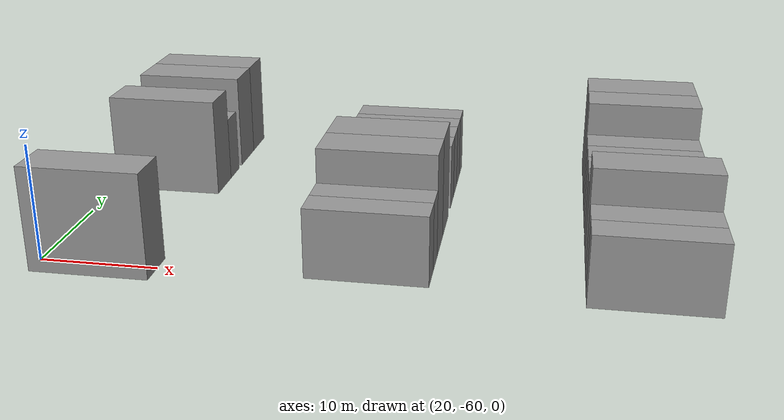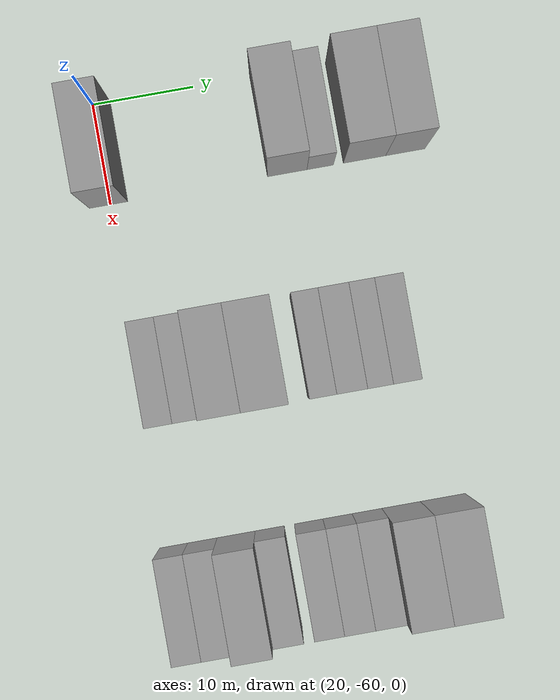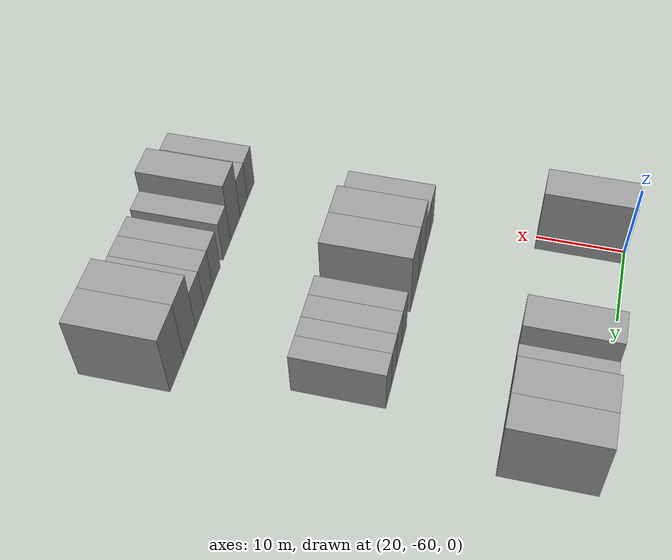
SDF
<sdf version="1.6">
 <world name="default">
  <model name="building_36">
   <static>1</static>
   <pose>25.0000 -60.1844 0 0.000000 0.000000 0.000000</pose>
   <link name="link">
    <pose>0 0 4.50 0 0 0</pose>
    <collision name="collision"><geometry><box><size>10.0000 3.8257 9.0000</size></box></geometry></collision>
    <visual name="visual">
     <cast_shadows>0</cast_shadows>
     <geometry><box><size>10.0000 3.8257 9.0000</size></box></geometry>
     <material>
      <script>
       <uri>model://grey_wall/materials/scripts</uri>
       <uri>model://grey_wall/materials/textures</uri>
       <name>vrc/grey_wall</name>
      </script>
     </material>
    </visual>
   </link>
  </model>
  <model name="building_37">
   <static>1</static>
   <pose>25.0000 -42.3587 0 0.000000 0.000000 0.000000</pose>
   <link name="link">
    <pose>0 0 4.50 0 0 0</pose>
    <collision name="collision"><geometry><box><size>10.0000 3.9419 9.0000</size></box></geometry></collision>
    <visual name="visual">
     <cast_shadows>0</cast_shadows>
     <geometry><box><size>10.0000 3.9419 9.0000</size></box></geometry>
     <material>
      <script>
       <uri>model://grey_wall/materials/scripts</uri>
       <uri>model://grey_wall/materials/textures</uri>
       <name>vrc/grey_wall</name>
      </script>
     </material>
    </visual>
   </link>
  </model>
  <model name="building_38">
   <static>1</static>
   <pose>25.0000 -39.0731 0 0.000000 0.000000 0.000000</pose>
   <link name="link">
    <pose>0 0 3.00 0 0 0</pose>
    <collision name="collision"><geometry><box><size>10.0000 2.6292 6.0000</size></box></geometry></collision>
    <visual name="visual">
     <cast_shadows>0</cast_shadows>
     <geometry><box><size>10.0000 2.6292 6.0000</size></box></geometry>
     <material>
      <script>
       <uri>model://grey_wall/materials/scripts</uri>
       <uri>model://grey_wall/materials/textures</uri>
       <name>vrc/grey_wall</name>
      </script>
     </material>
    </visual>
   </link>
  </model>
  <model name="building_39">
   <static>1</static>
   <pose>25.0000 -34.6380 0 0.000000 0.000000 0.000000</pose>
   <link name="link">
    <pose>0 0 4.50 0 0 0</pose>
    <collision name="collision"><geometry><box><size>10.0000 4.2411 9.0000</size></box></geometry></collision>
    <visual name="visual">
     <cast_shadows>0</cast_shadows>
     <geometry><box><size>10.0000 4.2411 9.0000</size></box></geometry>
     <material>
      <script>
       <uri>model://grey_wall/materials/scripts</uri>
       <uri>model://grey_wall/materials/textures</uri>
       <name>vrc/grey_wall</name>
      </script>
     </material>
    </visual>
   </link>
  </model>
  <model name="building_40">
   <static>1</static>
   <pose>25.0000 -30.5647 0 0.000000 0.000000 0.000000</pose>
   <link name="link">
    <pose>0 0 4.50 0 0 0</pose>
    <collision name="collision"><geometry><box><size>10.0000 3.9054 9.0000</size></box></geometry></collision>
    <visual name="visual">
     <cast_shadows>0</cast_shadows>
     <geometry><box><size>10.0000 3.9054 9.0000</size></box></geometry>
     <material>
      <script>
       <uri>model://grey_wall/materials/scripts</uri>
       <uri>model://grey_wall/materials/textures</uri>
       <name>vrc/grey_wall</name>
      </script>
     </material>
    </visual>
   </link>
  </model>
  <model name="building_158">
   <static>1</static>
   <pose>47.0000 -58.4649 0 0.000000 0.000000 0.000000</pose>
   <link name="link">
    <pose>0 0 3.00 0 0 0</pose>
    <collision name="collision"><geometry><box><size>10.0000 2.6866 6.0000</size></box></geometry></collision>
    <visual name="visual">
     <cast_shadows>0</cast_shadows>
     <geometry><box><size>10.0000 2.6866 6.0000</size></box></geometry>
     <material>
      <script>
       <uri>model://grey_wall/materials/scripts</uri>
       <uri>model://grey_wall/materials/textures</uri>
       <name>vrc/grey_wall</name>
      </script>
     </material>
    </visual>
   </link>
  </model>
  <model name="building_159">
   <static>1</static>
   <pose>47.0000 -55.8376 0 0.000000 0.000000 0.000000</pose>
   <link name="link">
    <pose>0 0 3.00 0 0 0</pose>
    <collision name="collision"><geometry><box><size>10.0000 2.5680 6.0000</size></box></geometry></collision>
    <visual name="visual">
     <cast_shadows>0</cast_shadows>
     <geometry><box><size>10.0000 2.5680 6.0000</size></box></geometry>
     <material>
      <script>
       <uri>model://grey_wall/materials/scripts</uri>
       <uri>model://grey_wall/materials/textures</uri>
       <name>vrc/grey_wall</name>
      </script>
     </material>
    </visual>
   </link>
  </model>
  <model name="building_160">
   <static>1</static>
   <pose>47.0000 -52.5850 0 0.000000 0.000000 0.000000</pose>
   <link name="link">
    <pose>0 0 4.50 0 0 0</pose>
    <collision name="collision"><geometry><box><size>10.0000 3.9374 9.0000</size></box></geometry></collision>
    <visual name="visual">
     <cast_shadows>0</cast_shadows>
     <geometry><box><size>10.0000 3.9374 9.0000</size></box></geometry>
     <material>
      <script>
       <uri>model://grey_wall/materials/scripts</uri>
       <uri>model://grey_wall/materials/textures</uri>
       <name>vrc/grey_wall</name>
      </script>
     </material>
    </visual>
   </link>
  </model>
  <model name="building_161">
   <static>1</static>
   <pose>47.0000 -48.4366 0 0.000000 0.000000 0.000000</pose>
   <link name="link">
    <pose>0 0 4.50 0 0 0</pose>
    <collision name="collision"><geometry><box><size>10.0000 4.3593 9.0000</size></box></geometry></collision>
    <visual name="visual">
     <cast_shadows>0</cast_shadows>
     <geometry><box><size>10.0000 4.3593 9.0000</size></box></geometry>
     <material>
      <script>
       <uri>model://grey_wall/materials/scripts</uri>
       <uri>model://grey_wall/materials/textures</uri>
       <name>vrc/grey_wall</name>
      </script>
     </material>
    </visual>
   </link>
  </model>
  <model name="building_162">
   <static>1</static>
   <pose>47.0000 -42.9770 0 0.000000 0.000000 0.000000</pose>
   <link name="link">
    <pose>0 0 3.00 0 0 0</pose>
    <collision name="collision"><geometry><box><size>10.0000 2.5599 6.0000</size></box></geometry></collision>
    <visual name="visual">
     <cast_shadows>0</cast_shadows>
     <geometry><box><size>10.0000 2.5599 6.0000</size></box></geometry>
     <material>
      <script>
       <uri>model://grey_wall/materials/scripts</uri>
       <uri>model://grey_wall/materials/textures</uri>
       <name>vrc/grey_wall</name>
      </script>
     </material>
    </visual>
   </link>
  </model>
  <model name="building_163">
   <static>1</static>
   <pose>47.0000 -40.2499 0 0.000000 0.000000 0.000000</pose>
   <link name="link">
    <pose>0 0 3.00 0 0 0</pose>
    <collision name="collision"><geometry><box><size>10.0000 2.8942 6.0000</size></box></geometry></collision>
    <visual name="visual">
     <cast_shadows>0</cast_shadows>
     <geometry><box><size>10.0000 2.8942 6.0000</size></box></geometry>
     <material>
      <script>
       <uri>model://grey_wall/materials/scripts</uri>
       <uri>model://grey_wall/materials/textures</uri>
       <name>vrc/grey_wall</name>
      </script>
     </material>
    </visual>
   </link>
  </model>
  <model name="building_164">
   <static>1</static>
   <pose>47.0000 -37.5944 0 0.000000 0.000000 0.000000</pose>
   <link name="link">
    <pose>0 0 3.00 0 0 0</pose>
    <collision name="collision"><geometry><box><size>10.0000 2.4168 6.0000</size></box></geometry></collision>
    <visual name="visual">
     <cast_shadows>0</cast_shadows>
     <geometry><box><size>10.0000 2.4168 6.0000</size></box></geometry>
     <material>
      <script>
       <uri>model://grey_wall/materials/scripts</uri>
       <uri>model://grey_wall/materials/textures</uri>
       <name>vrc/grey_wall</name>
      </script>
     </material>
    </visual>
   </link>
  </model>
  <model name="building_165">
   <static>1</static>
   <pose>47.0000 -35.0392 0 0.000000 0.000000 0.000000</pose>
   <link name="link">
    <pose>0 0 3.00 0 0 0</pose>
    <collision name="collision"><geometry><box><size>10.0000 2.6936 6.0000</size></box></geometry></collision>
    <visual name="visual">
     <cast_shadows>0</cast_shadows>
     <geometry><box><size>10.0000 2.6936 6.0000</size></box></geometry>
     <material>
      <script>
       <uri>model://grey_wall/materials/scripts</uri>
       <uri>model://grey_wall/materials/textures</uri>
       <name>vrc/grey_wall</name>
      </script>
     </material>
    </visual>
   </link>
  </model>
  <model name="building_283">
   <static>1</static>
   <pose>69.0000 -59.6959 0 0.000000 0.000000 0.000000</pose>
   <link name="link">
    <pose>0 0 3.00 0 0 0</pose>
    <collision name="collision"><geometry><box><size>10.0000 2.7855 6.0000</size></box></geometry></collision>
    <visual name="visual">
     <cast_shadows>0</cast_shadows>
     <geometry><box><size>10.0000 2.7855 6.0000</size></box></geometry>
     <material>
      <script>
       <uri>model://grey_wall/materials/scripts</uri>
       <uri>model://grey_wall/materials/textures</uri>
       <name>vrc/grey_wall</name>
      </script>
     </material>
    </visual>
   </link>
  </model>
  <model name="building_284">
   <static>1</static>
   <pose>69.0000 -56.8374 0 0.000000 0.000000 0.000000</pose>
   <link name="link">
    <pose>0 0 3.00 0 0 0</pose>
    <collision name="collision"><geometry><box><size>10.0000 2.9315 6.0000</size></box></geometry></collision>
    <visual name="visual">
     <cast_shadows>0</cast_shadows>
     <geometry><box><size>10.0000 2.9315 6.0000</size></box></geometry>
     <material>
      <script>
       <uri>model://grey_wall/materials/scripts</uri>
       <uri>model://grey_wall/materials/textures</uri>
       <name>vrc/grey_wall</name>
      </script>
     </material>
    </visual>
   </link>
  </model>
  <model name="building_285">
   <static>1</static>
   <pose>69.0000 -53.4896 0 0.000000 0.000000 0.000000</pose>
   <link name="link">
    <pose>0 0 4.50 0 0 0</pose>
    <collision name="collision"><geometry><box><size>10.0000 3.7639 9.0000</size></box></geometry></collision>
    <visual name="visual">
     <cast_shadows>0</cast_shadows>
     <geometry><box><size>10.0000 3.7639 9.0000</size></box></geometry>
     <material>
      <script>
       <uri>model://grey_wall/materials/scripts</uri>
       <uri>model://grey_wall/materials/textures</uri>
       <name>vrc/grey_wall</name>
      </script>
     </material>
    </visual>
   </link>
  </model>
  <model name="building_286">
   <static>1</static>
   <pose>69.0000 -50.1627 0 0.000000 0.000000 0.000000</pose>
   <link name="link">
    <pose>0 0 3.00 0 0 0</pose>
    <collision name="collision"><geometry><box><size>10.0000 2.8900 6.0000</size></box></geometry></collision>
    <visual name="visual">
     <cast_shadows>0</cast_shadows>
     <geometry><box><size>10.0000 2.8900 6.0000</size></box></geometry>
     <material>
      <script>
       <uri>model://grey_wall/materials/scripts</uri>
       <uri>model://grey_wall/materials/textures</uri>
       <name>vrc/grey_wall</name>
      </script>
     </material>
    </visual>
   </link>
  </model>
  <model name="building_287">
   <static>1</static>
   <pose>69.0000 -46.3096 0 0.000000 0.000000 0.000000</pose>
   <link name="link">
    <pose>0 0 3.00 0 0 0</pose>
    <collision name="collision"><geometry><box><size>10.0000 2.8162 6.0000</size></box></geometry></collision>
    <visual name="visual">
     <cast_shadows>0</cast_shadows>
     <geometry><box><size>10.0000 2.8162 6.0000</size></box></geometry>
     <material>
      <script>
       <uri>model://grey_wall/materials/scripts</uri>
       <uri>model://grey_wall/materials/textures</uri>
       <name>vrc/grey_wall</name>
      </script>
     </material>
    </visual>
   </link>
  </model>
  <model name="building_288">
   <static>1</static>
   <pose>69.0000 -43.4509 0 0.000000 0.000000 0.000000</pose>
   <link name="link">
    <pose>0 0 3.00 0 0 0</pose>
    <collision name="collision"><geometry><box><size>10.0000 2.9013 6.0000</size></box></geometry></collision>
    <visual name="visual">
     <cast_shadows>0</cast_shadows>
     <geometry><box><size>10.0000 2.9013 6.0000</size></box></geometry>
     <material>
      <script>
       <uri>model://grey_wall/materials/scripts</uri>
       <uri>model://grey_wall/materials/textures</uri>
       <name>vrc/grey_wall</name>
      </script>
     </material>
    </visual>
   </link>
  </model>
  <model name="building_289">
   <static>1</static>
   <pose>69.0000 -40.5129 0 0.000000 0.000000 0.000000</pose>
   <link name="link">
    <pose>0 0 3.00 0 0 0</pose>
    <collision name="collision"><geometry><box><size>10.0000 2.9747 6.0000</size></box></geometry></collision>
    <visual name="visual">
     <cast_shadows>0</cast_shadows>
     <geometry><box><size>10.0000 2.9747 6.0000</size></box></geometry>
     <material>
      <script>
       <uri>model://grey_wall/materials/scripts</uri>
       <uri>model://grey_wall/materials/textures</uri>
       <name>vrc/grey_wall</name>
      </script>
     </material>
    </visual>
   </link>
  </model>
  <model name="building_290">
   <static>1</static>
   <pose>69.0000 -37.1033 0 0.000000 0.000000 0.000000</pose>
   <link name="link">
    <pose>0 0 4.50 0 0 0</pose>
    <collision name="collision"><geometry><box><size>10.0000 3.8445 9.0000</size></box></geometry></collision>
    <visual name="visual">
     <cast_shadows>0</cast_shadows>
     <geometry><box><size>10.0000 3.8445 9.0000</size></box></geometry>
     <material>
      <script>
       <uri>model://grey_wall/materials/scripts</uri>
       <uri>model://grey_wall/materials/textures</uri>
       <name>vrc/grey_wall</name>
      </script>
     </material>
    </visual>
   </link>
  </model>
  <model name="building_291">
   <static>1</static>
   <pose>69.0000 -32.9557 0 0.000000 0.000000 0.000000</pose>
   <link name="link">
    <pose>0 0 4.50 0 0 0</pose>
    <collision name="collision"><geometry><box><size>10.0000 4.4507 9.0000</size></box></geometry></collision>
    <visual name="visual">
     <cast_shadows>0</cast_shadows>
     <geometry><box><size>10.0000 4.4507 9.0000</size></box></geometry>
     <material>
      <script>
       <uri>model://grey_wall/materials/scripts</uri>
       <uri>model://grey_wall/materials/textures</uri>
       <name>vrc/grey_wall</name>
      </script>
     </material>
    </visual>
   </link>
  </model>
 </world>
</sdf>
